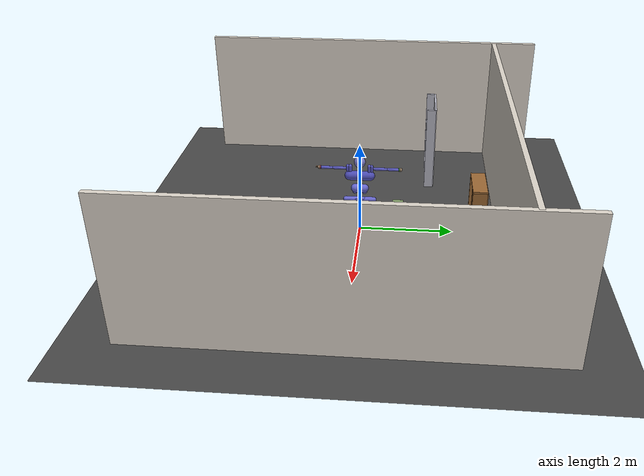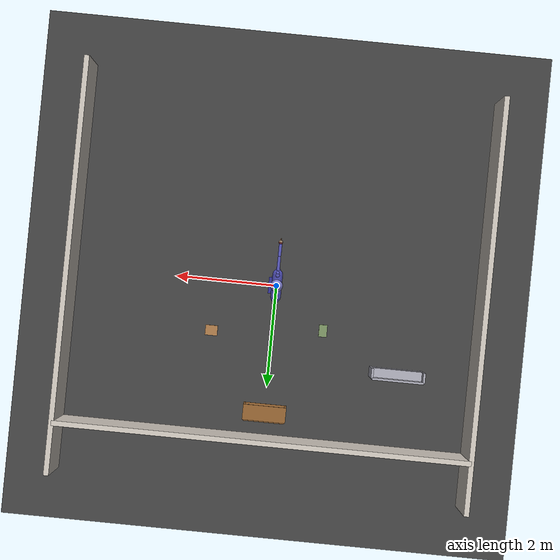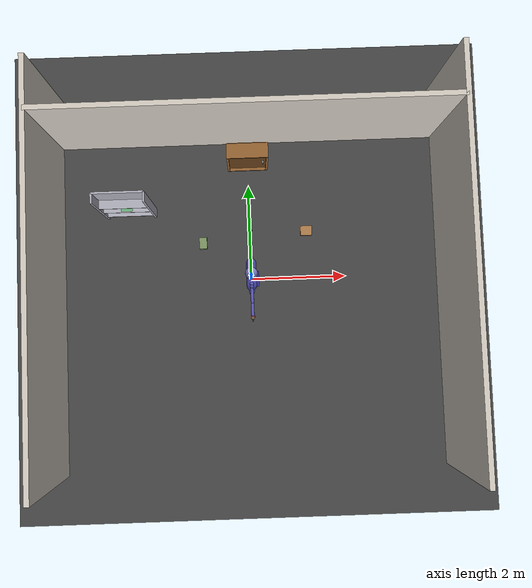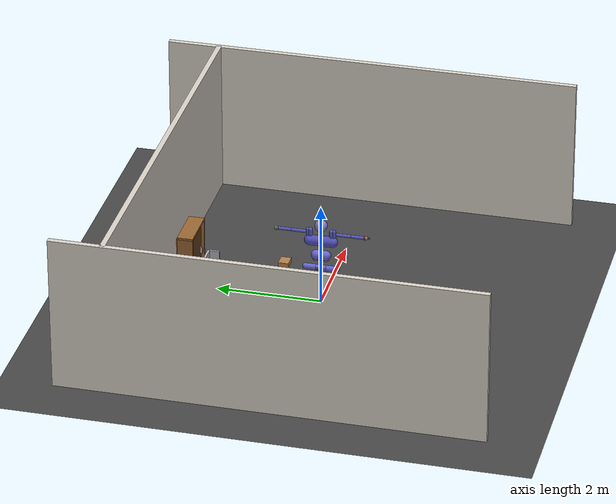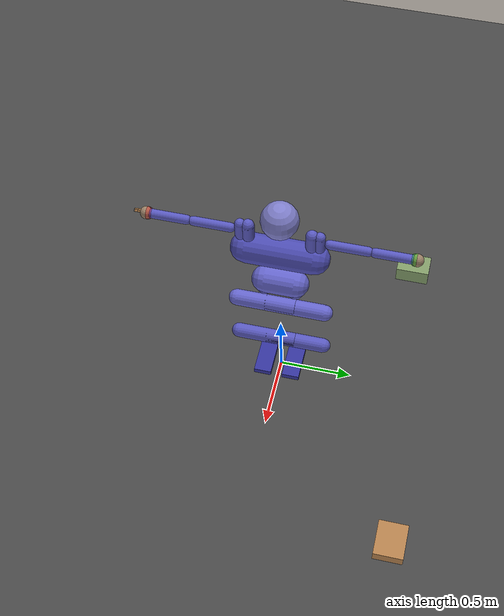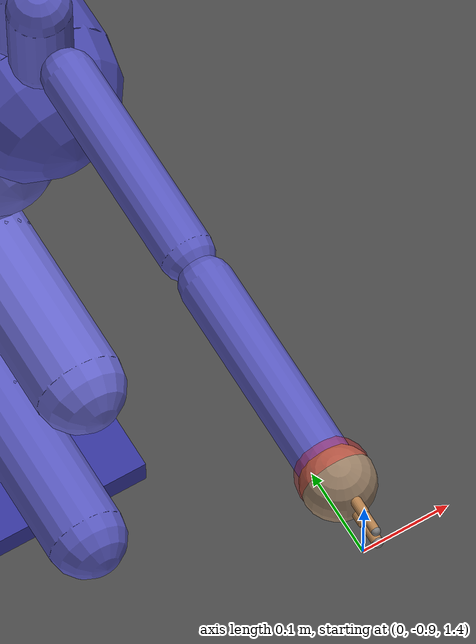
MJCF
<mujoco model="h1_loco_manipulation">

  <compiler angle="radian"/>

  <!-- Physics: elliptic cones, NoSlip solver, implicit damping, energy tracking -->
  <option timestep="0.002" gravity="0 0 -9.81" solver="Newton" iterations="100" tolerance="1e-10"
          cone="elliptic" impratio="10" noslip_iterations="3" integrator="implicitfast">
    <flag energy="enable"/>
  </option>

  <visual>
    <headlight diffuse="0.6 0.6 0.6" ambient="0.3 0.3 0.3" specular="0 0 0"/>
    <rgba haze="0.15 0.25 0.35 1"/>
    <quality shadowsize="4096"/>
    <global offwidth="1280" offheight="720"/>
  </visual>

  <asset>
    <texture type="2d" name="groundplane" builtin="checker" mark="edge"
             rgb1="0.25 0.25 0.25" rgb2="0.3 0.3 0.3" markrgb="0.8 0.8 0.8"
             width="512" height="512"/>
    <material name="groundplane" texture="groundplane" texuniform="true" texrepeat="5 5" reflectance="0.1"/>
    <material name="wall"        rgba="0.85 0.82 0.78 1"/>
    <material name="wood"        rgba="0.6  0.4  0.2  1"/>
    <material name="wood_dark"   rgba="0.4  0.25 0.1  1"/>
    <material name="bottle"      rgba="0.2  0.6  0.9  0.85"/>
    <material name="metal"       rgba="0.7  0.7  0.75 1"/>
    <material name="target"      rgba="0.1  0.8  0.2  0.4"/>
  </asset>

  <worldbody>
    <light name="main_light" pos="0 0 4"   dir="0 0 -1"         diffuse="0.8 0.8 0.8" specular="0.2 0.2 0.2" castshadow="true"/>
    <light name="fill_light" pos="2 -2 3"  dir="-0.4 0.4 -0.8"  diffuse="0.3 0.3 0.4" specular="0 0 0"       castshadow="false"/>

    <!-- Floor -->
    <geom name="floor" type="plane" size="5 5 0.1" material="groundplane"
          condim="4" friction="0.8 0.02 0.01" solimp="0.9 0.95 0.001" solref="0.01 1"/>

    <!-- Walls -->
    <geom name="wall_back"  type="box" pos="0 3 1.5"   size="4    0.05 1.5" material="wall"/>
    <geom name="wall_left"  type="box" pos="-4 0 1.5"  size="0.05 4    1.5" material="wall"/>
    <geom name="wall_right" type="box" pos="4 0 1.5"   size="0.05 4    1.5" material="wall"/>

    <!-- Cabinet (fixed body with articulated door) -->
    <body name="cabinet" pos="0 2.5 0">
      <geom name="cab_back"   type="box" pos="0 0.15 0.6"  size="0.4  0.02 0.6"  material="wood"/>
      <geom name="cab_left"   type="box" pos="-0.4 0 0.6"  size="0.02 0.15 0.6"  material="wood"/>
      <geom name="cab_right"  type="box" pos="0.4 0 0.6"   size="0.02 0.15 0.6"  material="wood"/>
      <geom name="cab_top"    type="box" pos="0 0 1.22"    size="0.42 0.15 0.02"  material="wood"/>
      <geom name="cab_bottom" type="box" pos="0 0 0.02"    size="0.42 0.15 0.02"  material="wood"/>
      <geom name="cab_shelf"  type="box" pos="0 0.05 0.7"  size="0.38 0.13 0.015" material="wood_dark"/>

      <body name="cabinet_door" pos="-0.4 0 0.6">
        <joint name="cabinet_door_hinge" type="hinge" pos="0 0 0" axis="0 0 1"
               range="-0.1 1.57" damping="2.0" stiffness="0.5" armature="0.01"/>
        <geom name="door_panel"      type="box"      pos="0.4 -0.075 0"  size="0.4   0.015 0.58" material="wood_dark"/>
        <geom name="door_handle"     type="cylinder" pos="0.72 -0.1 0"   size="0.012 0.04"        material="metal" euler="1.5708 0 0"/>
        <geom name="door_handle_bar" type="box"      pos="0.72 -0.09 0"  size="0.012 0.04  0.06"  material="metal"/>
      </body>
    </body>

    <!-- Target shelf -->
    <body name="shelf_unit" pos="-2.5 1.5 0">
      <geom name="shelf_back"  type="box" pos="0 0.1 1.0"   size="0.5  0.02 1.0"  material="metal"/>
      <geom name="shelf_left"  type="box" pos="-0.5 0 1.0"  size="0.02 0.1  1.0"  material="metal"/>
      <geom name="shelf_right" type="box" pos="0.5 0 1.0"   size="0.02 0.1  1.0"  material="metal"/>
      <geom name="shelf_s1"    type="box" pos="0 0 0.3"     size="0.48 0.1  0.01"  material="metal"/>
      <geom name="shelf_s2"    type="box" pos="0 0 0.8"     size="0.48 0.1  0.01"  material="metal"/>
      <geom name="shelf_s3"    type="box" pos="0 0 1.3"     size="0.48 0.1  0.01"  material="metal"/>
      <geom name="shelf_target_marker" type="box" pos="0 0 0.815" size="0.12 0.08 0.005"
            material="target" contype="0" conaffinity="0"/>
      <site name="shelf_target" pos="0 0 0.83" size="0.01"/>
    </body>

    <!-- Bottle (free body, starts inside cabinet) -->
    <body name="bottle" pos="0 2.45 0.75">
      <freejoint name="bottle_free"/>
      <geom name="bottle_body" type="cylinder" size="0.035 0.1"  pos="0 0 0"    material="bottle" mass="0.35" condim="4" friction="1.5 0.02 0.001" solimp="0.99 0.999 0.001" solref="0.005 1"/>
      <geom name="bottle_neck" type="cylinder" size="0.018 0.04" pos="0 0 0.14" material="bottle" mass="0.05" condim="1"/>
      <geom name="bottle_cap"  type="cylinder" size="0.022 0.01" pos="0 0 0.185" rgba="0.9 0.3 0.1 1" mass="0.02" condim="1"/>
      <site name="bottle_center" pos="0 0 0" size="0.001"/>
    </body>

    <!-- Floor obstacles -->
    <body name="box_obs1" pos="1.2 1.0 0">
      <geom type="box" size="0.12 0.1 0.08" rgba="0.7 0.5 0.3 1" mass="2.0"/>
    </body>
    <body name="box_obs2" pos="-1.0 0.8 0">
      <geom type="box" size="0.08 0.12 0.12" rgba="0.5 0.6 0.4 1" mass="1.5"/>
    </body>
    <!-- Mocap body: invisible tracking anchor for pelvis weld -->
    <body name="pelvis_mocap" mocap="true" pos="0 0 0.93">
      <geom type="sphere" size="0.01" rgba="0 0 0 0" contype="0" conaffinity="0" mass="0"/>
    </body>

  </worldbody>

  <!-- H1 humanoid robot (worldbody + actuators + contact excludes) -->
  <include file="h1_model.xml"/>

  <!-- Weld pelvis to mocap anchor for stable control.
       We drive mocap_pos in Python to simulate locomotion. -->
  <equality>
    <weld name="pelvis_anchor" body1="pelvis" body2="pelvis_mocap"
          solref="0.005 1" solimp="0.99 0.999 0.0001"/>
  </equality>

  <sensor>
    <!-- IMU on pelvis — orientation, angular velocity, linear acceleration -->
    <framequat   name="imu_quat"          objtype="body" objname="pelvis"/>
    <frameangvel name="imu_gyro"          objtype="body" objname="pelvis"/>
    <framelinvel name="imu_accel"         objtype="body" objname="pelvis"/>
    <!-- Foot force sensors — 3-axis contact forces at sole sites -->
    <force       name="left_foot_force"   site="left_foot_contact"/>
    <force       name="right_foot_force"  site="right_foot_contact"/>
    <!-- Hand Cartesian positions (framepos) — used in IK and grasp detection -->
    <framepos    name="left_hand_pos"     objtype="site" objname="left_hand_site"/>
    <framepos    name="right_hand_pos"    objtype="site" objname="right_hand_site"/>
    <!-- Wrist 6-DOF force/torque — detects grasp load, used in reward computation -->
    <force       name="right_wrist_force"  site="right_hand_site"/>
    <torque      name="right_wrist_torque" site="right_hand_site"/>
    <!-- Tactile touch sensors at right-hand fingertip proxies -->
    <touch       name="touch_palm"        site="right_hand_site"/>
    <!-- Actuator force sensors — monitors motor effort for energy reward -->
    <actuatorfrc name="actuator_forces"   actuator="right_shoulder_pitch"/>
    <!-- Object and target tracking -->
    <framepos    name="bottle_pos"        objtype="site" objname="bottle_center"/>
    <framepos    name="shelf_pos"         objtype="site" objname="shelf_target"/>
    <!-- System energy — proves physics fidelity, energy conservation measurable -->
    <e_kinetic   name="energy_kinetic"/>
    <e_potential name="energy_potential"/>
  </sensor>

  <!-- Named keyframes — demo poses loadable via mj_resetDataKeyframe() -->
  <keyframe>
    <key name="home"      mpos="0 0 0.93"   mquat="1 0 0 0"/>
    <key name="approach"  mpos="0 1.9 0.93" mquat="1 0 0 0"/>
  </keyframe>

</mujoco>

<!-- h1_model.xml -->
<!-- H1 Humanoid: 19 actuated DOF (torso + legs + arms), geometry-only (no external meshes) -->
<mujoco>

  <contact>
    <exclude body1="pelvis"                    body2="left_hip_yaw_link"/>
    <exclude body1="pelvis"                    body2="right_hip_yaw_link"/>
    <exclude body1="pelvis"                    body2="torso_link"/>
    <exclude body1="left_hip_yaw_link"         body2="left_hip_roll_link"/>
    <exclude body1="left_hip_roll_link"        body2="left_hip_pitch_link"/>
    <exclude body1="left_hip_pitch_link"       body2="left_knee_link"/>
    <exclude body1="left_knee_link"            body2="left_ankle_link"/>
    <exclude body1="right_hip_yaw_link"        body2="right_hip_roll_link"/>
    <exclude body1="right_hip_roll_link"       body2="right_hip_pitch_link"/>
    <exclude body1="right_hip_pitch_link"      body2="right_knee_link"/>
    <exclude body1="right_knee_link"           body2="right_ankle_link"/>
    <exclude body1="torso_link"                body2="left_shoulder_pitch_link"/>
    <exclude body1="torso_link"                body2="right_shoulder_pitch_link"/>
    <exclude body1="left_shoulder_pitch_link"  body2="left_shoulder_roll_link"/>
    <exclude body1="left_shoulder_roll_link"   body2="left_shoulder_yaw_link"/>
    <exclude body1="left_shoulder_yaw_link"    body2="left_elbow_link"/>
    <exclude body1="right_shoulder_pitch_link" body2="right_shoulder_roll_link"/>
    <exclude body1="right_shoulder_roll_link"  body2="right_shoulder_yaw_link"/>
    <exclude body1="right_shoulder_yaw_link"   body2="right_elbow_link"/>
  </contact>

  <worldbody>
    <body name="pelvis" pos="0 0 1.0">
      <freejoint name="root"/>
      <geom name="pelvis_geom" type="capsule" size="0.09 0.1" euler="1.5708 0 0"
            mass="5.0" rgba="0.4 0.4 0.8 1" condim="1"/>
      <inertial pos="0 0 0" mass="5.0" diaginertia="0.05 0.05 0.03"/>

      <!-- TORSO -->
      <body name="torso_link" pos="0 0 0.1">
        <joint name="torso" type="hinge" axis="0 0 1" range="-2.35 2.35"
               damping="10" stiffness="0" armature="0.1"/>
        <geom name="torso_geom" type="capsule" size="0.1 0.22" euler="1.5708 0 0"
              pos="0 0 0.2" mass="10.0" rgba="0.3 0.3 0.7 1" condim="1"/>
        <inertial pos="0 0 0.2" mass="10.0" diaginertia="0.15 0.15 0.05"/>

        <body name="head" pos="0 0 0.52">
          <geom type="sphere" size="0.12" mass="1.5" rgba="0.5 0.5 0.8 1" condim="1"/>
        </body>

        <!-- LEFT ARM -->
        <body name="left_shoulder_pitch_link" pos="0 0.2 0.37">
          <joint name="left_shoulder_pitch" type="hinge" axis="0 1 0"
                 range="-3.14 3.14" damping="5" stiffness="0" armature="0.05"/>
          <geom type="capsule" size="0.04 0.05" mass="1.5" rgba="0.35 0.35 0.75 1" condim="1"/>
          <inertial pos="0 0 0" mass="1.5" diaginertia="0.005 0.005 0.003"/>

          <body name="left_shoulder_roll_link" pos="0 0.05 0">
            <joint name="left_shoulder_roll" type="hinge" axis="1 0 0"
                   range="-1.57 3.14" damping="5" stiffness="0" armature="0.05"/>
            <geom type="capsule" size="0.035 0.05" mass="0.8" rgba="0.35 0.35 0.75 1" condim="1"/>
            <inertial pos="0 0 0" mass="0.8" diaginertia="0.003 0.003 0.002"/>

            <body name="left_shoulder_yaw_link" pos="0 0.05 0">
              <joint name="left_shoulder_yaw" type="hinge" axis="0 0 1"
                     range="-1.57 1.57" damping="5" stiffness="0" armature="0.05"/>
              <geom type="capsule" size="0.03 0.12" euler="1.5708 0 0" pos="0 0.13 0"
                    mass="0.8" rgba="0.35 0.35 0.75 1" condim="1"/>
              <inertial pos="0 0.1 0" mass="0.8" diaginertia="0.01 0.01 0.001"/>

              <body name="left_elbow_link" pos="0 0.28 0">
                <joint name="left_elbow" type="hinge" axis="0 1 0"
                       range="-1.57 1.57" damping="3" stiffness="0" armature="0.05"/>
                <geom type="capsule" size="0.03 0.12" euler="1.5708 0 0" pos="0 0.13 0"
                      mass="0.6" rgba="0.35 0.35 0.75 1" condim="1"/>
                <inertial pos="0 0.1 0" mass="0.6" diaginertia="0.008 0.008 0.001"/>
                <site name="left_hand_site" pos="0 0.26 0" size="0.04" rgba="0 1 0 0.3"/>
                <geom name="left_hand" type="sphere" size="0.04" pos="0 0.27 0"
                      mass="0.3" rgba="0.6 0.5 0.4 1" condim="4" friction="1.5 0.02 0.01"/>
              </body>
            </body>
          </body>
        </body>

        <!-- RIGHT ARM -->
        <body name="right_shoulder_pitch_link" pos="0 -0.2 0.37">
          <joint name="right_shoulder_pitch" type="hinge" axis="0 1 0"
                 range="-3.14 3.14" damping="5" stiffness="0" armature="0.05"/>
          <geom type="capsule" size="0.04 0.05" mass="1.5" rgba="0.35 0.35 0.75 1" condim="1"/>
          <inertial pos="0 0 0" mass="1.5" diaginertia="0.005 0.005 0.003"/>

          <body name="right_shoulder_roll_link" pos="0 -0.05 0">
            <joint name="right_shoulder_roll" type="hinge" axis="1 0 0"
                   range="-3.14 1.57" damping="5" stiffness="0" armature="0.05"/>
            <geom type="capsule" size="0.035 0.05" mass="0.8" rgba="0.35 0.35 0.75 1" condim="1"/>
            <inertial pos="0 0 0" mass="0.8" diaginertia="0.003 0.003 0.002"/>

            <body name="right_shoulder_yaw_link" pos="0 -0.05 0">
              <joint name="right_shoulder_yaw" type="hinge" axis="0 0 1"
                     range="-1.57 1.57" damping="5" stiffness="0" armature="0.05"/>
              <geom type="capsule" size="0.03 0.12" euler="1.5708 0 0" pos="0 -0.13 0"
                    mass="0.8" rgba="0.35 0.35 0.75 1" condim="1"/>
              <inertial pos="0 -0.1 0" mass="0.8" diaginertia="0.01 0.01 0.001"/>

              <body name="right_elbow_link" pos="0 -0.28 0">
                <joint name="right_elbow" type="hinge" axis="0 1 0"
                       range="-1.57 1.57" damping="3" stiffness="0" armature="0.05"/>
                <geom type="capsule" size="0.03 0.12" euler="1.5708 0 0" pos="0 -0.13 0"
                      mass="0.6" rgba="0.35 0.35 0.75 1" condim="1"/>
                <inertial pos="0 -0.1 0" mass="0.6" diaginertia="0.008 0.008 0.001"/>
                <site name="right_hand_site" pos="0 -0.26 0" size="0.04" rgba="1 0 0 0.3"/>
                <geom name="right_hand" type="sphere" size="0.04" pos="0 -0.27 0"
                      mass="0.3" rgba="0.6 0.5 0.4 1" condim="4" friction="1.5 0.02 0.01"/>

                <!-- ── 3-finger dexterous gripper at wrist ── -->
                <body name="gripper_base" pos="0 -0.28 0">
                  <geom type="box" size="0.022 0.012 0.018" rgba="0.4 0.4 0.4 1" mass="0.08" condim="1"/>

                  <!-- Finger 1 (index) -->
                  <body name="f1_prox" pos="0 -0.013 0.018">
                    <joint name="f1_mcp" type="hinge" axis="1 0 0" range="-0.1 1.4"
                           damping="0.05" armature="0.001" frictionloss="0.005"/>
                    <geom type="capsule" fromto="0 0 0  0 -0.025 0" size="0.006"
                          rgba="0.7 0.5 0.3 1" condim="4" friction="1.5 0.005 0.0001"/>
                    <body name="f1_dist" pos="0 -0.025 0">
                      <joint name="f1_pip" type="hinge" axis="1 0 0" range="0 1.2"
                             damping="0.03" armature="0.001"/>
                      <geom type="capsule" fromto="0 0 0  0 -0.022 0" size="0.005"
                            rgba="0.7 0.5 0.3 1" condim="4" friction="1.5 0.005 0.0001"/>
                      <site name="tip_f1" pos="0 -0.024 0" size="0.005"/>
                    </body>
                  </body>

                  <!-- Finger 2 (middle) -->
                  <body name="f2_prox" pos="0 -0.013 0">
                    <joint name="f2_mcp" type="hinge" axis="1 0 0" range="-0.1 1.4"
                           damping="0.05" armature="0.001" frictionloss="0.005"/>
                    <geom type="capsule" fromto="0 0 0  0 -0.027 0" size="0.007"
                          rgba="0.7 0.5 0.3 1" condim="4" friction="1.5 0.005 0.0001"/>
                    <body name="f2_dist" pos="0 -0.027 0">
                      <joint name="f2_pip" type="hinge" axis="1 0 0" range="0 1.2"
                             damping="0.03" armature="0.001"/>
                      <geom type="capsule" fromto="0 0 0  0 -0.024 0" size="0.006"
                            rgba="0.7 0.5 0.3 1" condim="4" friction="1.5 0.005 0.0001"/>
                      <site name="tip_f2" pos="0 -0.026 0" size="0.006"/>
                    </body>
                  </body>

                  <!-- Thumb (opposing) -->
                  <body name="thumb_prox" pos="0 -0.013 -0.018" euler="0 0 3.1416">
                    <joint name="th_mcp" type="hinge" axis="1 0 0" range="-0.1 1.3"
                           damping="0.05" armature="0.001" frictionloss="0.005"/>
                    <geom type="capsule" fromto="0 0 0  0 -0.022 0" size="0.007"
                          rgba="0.8 0.55 0.3 1" condim="4" friction="1.5 0.005 0.0001"/>
                    <body name="thumb_dist" pos="0 -0.022 0">
                      <joint name="th_ip" type="hinge" axis="1 0 0" range="0 1.1"
                             damping="0.03" armature="0.001"/>
                      <geom type="capsule" fromto="0 0 0  0 -0.018 0" size="0.006"
                            rgba="0.8 0.55 0.3 1" condim="4" friction="1.5 0.005 0.0001"/>
                      <site name="tip_th" pos="0 -0.020 0" size="0.006"/>
                    </body>
                  </body>
                </body>
                <!-- ── end gripper ── -->
              </body>
            </body>
          </body>
        </body>

      </body> <!-- torso_link -->

      <!-- LEFT LEG -->
      <body name="left_hip_yaw_link" pos="0 0.1 -0.07">
        <joint name="left_hip_yaw" type="hinge" axis="0 0 1"
               range="-0.43 0.43" damping="15" stiffness="0" armature="0.1"/>
        <geom type="sphere" size="0.06" mass="1.5" rgba="0.4 0.4 0.8 1" condim="1"/>
        <inertial pos="0 0 0" mass="1.5" diaginertia="0.004 0.004 0.004"/>

        <body name="left_hip_roll_link">
          <joint name="left_hip_roll" type="hinge" axis="1 0 0"
                 range="-0.43 0.43" damping="15" stiffness="0" armature="0.1"/>
          <geom type="sphere" size="0.055" mass="1.0" rgba="0.4 0.4 0.8 1" condim="1"/>
          <inertial pos="0 0 0" mass="1.0" diaginertia="0.003 0.003 0.003"/>

          <body name="left_hip_pitch_link">
            <joint name="left_hip_pitch" type="hinge" axis="0 1 0"
                   range="-1.57 1.57" damping="15" stiffness="0" armature="0.1"/>
            <geom type="capsule" size="0.055 0.2" euler="1.5708 0 0" pos="0 0 -0.2"
                  mass="5.0" rgba="0.4 0.4 0.8 1" condim="1"/>
            <inertial pos="0 0 -0.2" mass="5.0" diaginertia="0.08 0.08 0.01"/>

            <body name="left_knee_link" pos="0 0 -0.4">
              <joint name="left_knee" type="hinge" axis="0 1 0"
                     range="-0.26 2.35" damping="10" stiffness="0" armature="0.1"/>
              <geom type="capsule" size="0.05 0.2" euler="1.5708 0 0" pos="0 0 -0.2"
                    mass="3.5" rgba="0.35 0.35 0.75 1" condim="1"/>
              <inertial pos="0 0 -0.2" mass="3.5" diaginertia="0.05 0.05 0.008"/>

              <body name="left_ankle_link" pos="0 0 -0.4">
                <joint name="left_ankle_pitch" type="hinge" axis="0 1 0"
                       range="-0.87 0.52" damping="5" stiffness="0" armature="0.1"/>
                <joint name="left_ankle_roll" type="hinge" axis="1 0 0"
                       range="-0.26 0.26" damping="3" stiffness="0" armature="0.05"/>
                <geom name="left_foot_geom" type="box" size="0.12 0.06 0.02" pos="0.04 0 -0.04"
                      mass="1.5" rgba="0.2 0.2 0.6 1" condim="4" friction="0.9 0.02 0.01"/>
                <inertial pos="0 0 0" mass="1.5" diaginertia="0.01 0.005 0.012"/>
                <site name="left_foot_contact" pos="0 0 -0.06" size="0.01"/>
              </body>
            </body>
          </body>
        </body>
      </body>

      <!-- RIGHT LEG -->
      <body name="right_hip_yaw_link" pos="0 -0.1 -0.07">
        <joint name="right_hip_yaw" type="hinge" axis="0 0 1"
               range="-0.43 0.43" damping="15" stiffness="0" armature="0.1"/>
        <geom type="sphere" size="0.06" mass="1.5" rgba="0.4 0.4 0.8 1" condim="1"/>
        <inertial pos="0 0 0" mass="1.5" diaginertia="0.004 0.004 0.004"/>

        <body name="right_hip_roll_link">
          <joint name="right_hip_roll" type="hinge" axis="1 0 0"
                 range="-0.43 0.43" damping="15" stiffness="0" armature="0.1"/>
          <geom type="sphere" size="0.055" mass="1.0" rgba="0.4 0.4 0.8 1" condim="1"/>
          <inertial pos="0 0 0" mass="1.0" diaginertia="0.003 0.003 0.003"/>

          <body name="right_hip_pitch_link">
            <joint name="right_hip_pitch" type="hinge" axis="0 1 0"
                   range="-1.57 1.57" damping="15" stiffness="0" armature="0.1"/>
            <geom type="capsule" size="0.055 0.2" euler="1.5708 0 0" pos="0 0 -0.2"
                  mass="5.0" rgba="0.4 0.4 0.8 1" condim="1"/>
            <inertial pos="0 0 -0.2" mass="5.0" diaginertia="0.08 0.08 0.01"/>

            <body name="right_knee_link" pos="0 0 -0.4">
              <joint name="right_knee" type="hinge" axis="0 1 0"
                     range="-0.26 2.35" damping="10" stiffness="0" armature="0.1"/>
              <geom type="capsule" size="0.05 0.2" euler="1.5708 0 0" pos="0 0 -0.2"
                    mass="3.5" rgba="0.35 0.35 0.75 1" condim="1"/>
              <inertial pos="0 0 -0.2" mass="3.5" diaginertia="0.05 0.05 0.008"/>

              <body name="right_ankle_link" pos="0 0 -0.4">
                <joint name="right_ankle_pitch" type="hinge" axis="0 1 0"
                       range="-0.87 0.52" damping="5" stiffness="0" armature="0.1"/>
                <joint name="right_ankle_roll" type="hinge" axis="1 0 0"
                       range="-0.26 0.26" damping="3" stiffness="0" armature="0.05"/>
                <geom name="right_foot_geom" type="box" size="0.12 0.06 0.02" pos="0.04 0 -0.04"
                      mass="1.5" rgba="0.2 0.2 0.6 1" condim="4" friction="0.9 0.02 0.01"/>
                <inertial pos="0 0 0" mass="1.5" diaginertia="0.01 0.005 0.012"/>
                <site name="right_foot_contact" pos="0 0 -0.06" size="0.01"/>
              </body>
            </body>
          </body>
        </body>
      </body>

    </body> <!-- pelvis -->
  </worldbody>

  <actuator>
    <!-- Gains and force limits scaled for ~47 kg humanoid body mass -->
    <position name="torso"                joint="torso"                kp="400"  kv="40"  forcerange="-400  400"/>
    <position name="left_hip_yaw"         joint="left_hip_yaw"         kp="400"  kv="40"  forcerange="-400  400"/>
    <position name="left_hip_roll"        joint="left_hip_roll"        kp="400"  kv="40"  forcerange="-400  400"/>
    <position name="left_hip_pitch"       joint="left_hip_pitch"       kp="600"  kv="60"  forcerange="-600  600"/>
    <position name="left_knee"            joint="left_knee"            kp="600"  kv="60"  forcerange="-600  600"/>
    <position name="left_ankle_pitch"     joint="left_ankle_pitch"     kp="300"  kv="30"  forcerange="-300  300"/>
    <position name="left_ankle_roll"      joint="left_ankle_roll"      kp="150"  kv="15"  forcerange="-150  150"/>
    <position name="right_hip_yaw"        joint="right_hip_yaw"        kp="400"  kv="40"  forcerange="-400  400"/>
    <position name="right_hip_roll"       joint="right_hip_roll"       kp="400"  kv="40"  forcerange="-400  400"/>
    <position name="right_hip_pitch"      joint="right_hip_pitch"      kp="600"  kv="60"  forcerange="-600  600"/>
    <position name="right_knee"           joint="right_knee"           kp="600"  kv="60"  forcerange="-600  600"/>
    <position name="right_ankle_pitch"    joint="right_ankle_pitch"    kp="300"  kv="30"  forcerange="-300  300"/>
    <position name="right_ankle_roll"     joint="right_ankle_roll"     kp="150"  kv="15"  forcerange="-150  150"/>
    <position name="left_shoulder_pitch"  joint="left_shoulder_pitch"  kp="150"  kv="15"  forcerange="-150  150"/>
    <position name="left_shoulder_roll"   joint="left_shoulder_roll"   kp="150"  kv="15"  forcerange="-150  150"/>
    <position name="left_shoulder_yaw"    joint="left_shoulder_yaw"    kp="80"   kv="8"   forcerange="-80    80"/>
    <position name="left_elbow"           joint="left_elbow"           kp="100"  kv="10"  forcerange="-100  100"/>
    <position name="right_shoulder_pitch" joint="right_shoulder_pitch" kp="150"  kv="15"  forcerange="-150  150"/>
    <position name="right_shoulder_roll"  joint="right_shoulder_roll"  kp="150"  kv="15"  forcerange="-150  150"/>
    <position name="right_shoulder_yaw"   joint="right_shoulder_yaw"   kp="80"   kv="8"   forcerange="-80    80"/>
    <position name="right_elbow"          joint="right_elbow"          kp="100"  kv="10"  forcerange="-100  100"/>
    <!-- 3-finger dexterous gripper — 6 DOF (MCP+PIP per finger, thumb MCP+IP) -->
    <!-- Tendon-coupled: PIP = 0.7 × MCP (underactuated, like real tendon-driven hand) -->
    <position name="f1_flex" joint="f1_mcp" kp="3" kv="0.3" forcerange="-3 3" ctrlrange="-0.1 1.4"/>
    <position name="f2_flex" joint="f2_mcp" kp="3" kv="0.3" forcerange="-3 3" ctrlrange="-0.1 1.4"/>
    <position name="th_flex" joint="th_mcp" kp="4" kv="0.4" forcerange="-4 4" ctrlrange="-0.1 1.3"/>
  </actuator>

  <!-- Tendon coupling: PIP joints follow MCP (underactuated tendon-driven finger) -->
  <tendon>
    <fixed name="f1_couple">
      <joint joint="f1_mcp" coef="1.0"/>
      <joint joint="f1_pip" coef="-0.7"/>
    </fixed>
    <fixed name="f2_couple">
      <joint joint="f2_mcp" coef="1.0"/>
      <joint joint="f2_pip" coef="-0.7"/>
    </fixed>
    <fixed name="th_couple">
      <joint joint="th_mcp" coef="1.0"/>
      <joint joint="th_ip"  coef="-0.6"/>
    </fixed>
  </tendon>

  <!-- Fingertip touch sensors + tip positions -->
  <sensor>
    <touch    name="touch_f1"    site="tip_f1"/>
    <touch    name="touch_f2"    site="tip_f2"/>
    <touch    name="touch_th"    site="tip_th"/>
    <framepos name="pos_f1_tip"  objtype="site" objname="tip_f1"/>
    <framepos name="pos_f2_tip"  objtype="site" objname="tip_f2"/>
    <framepos name="pos_th_tip"  objtype="site" objname="tip_th"/>
  </sensor>

</mujoco>
